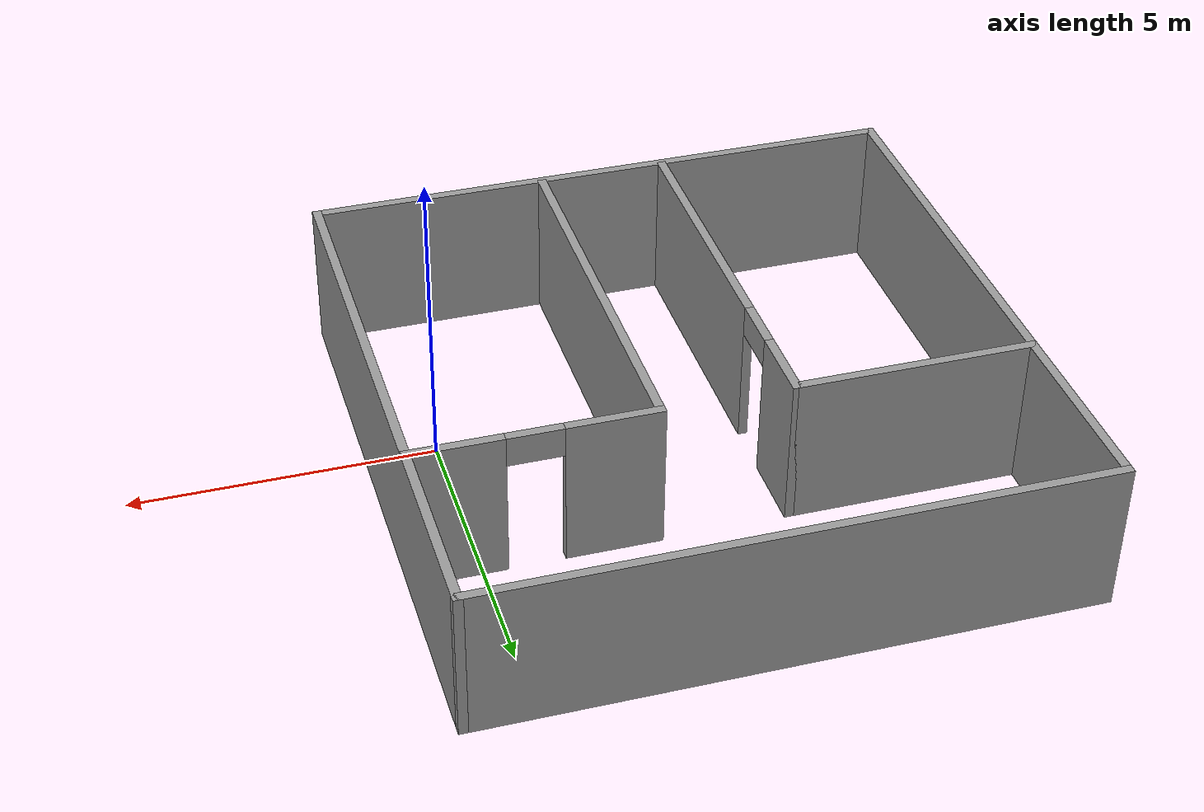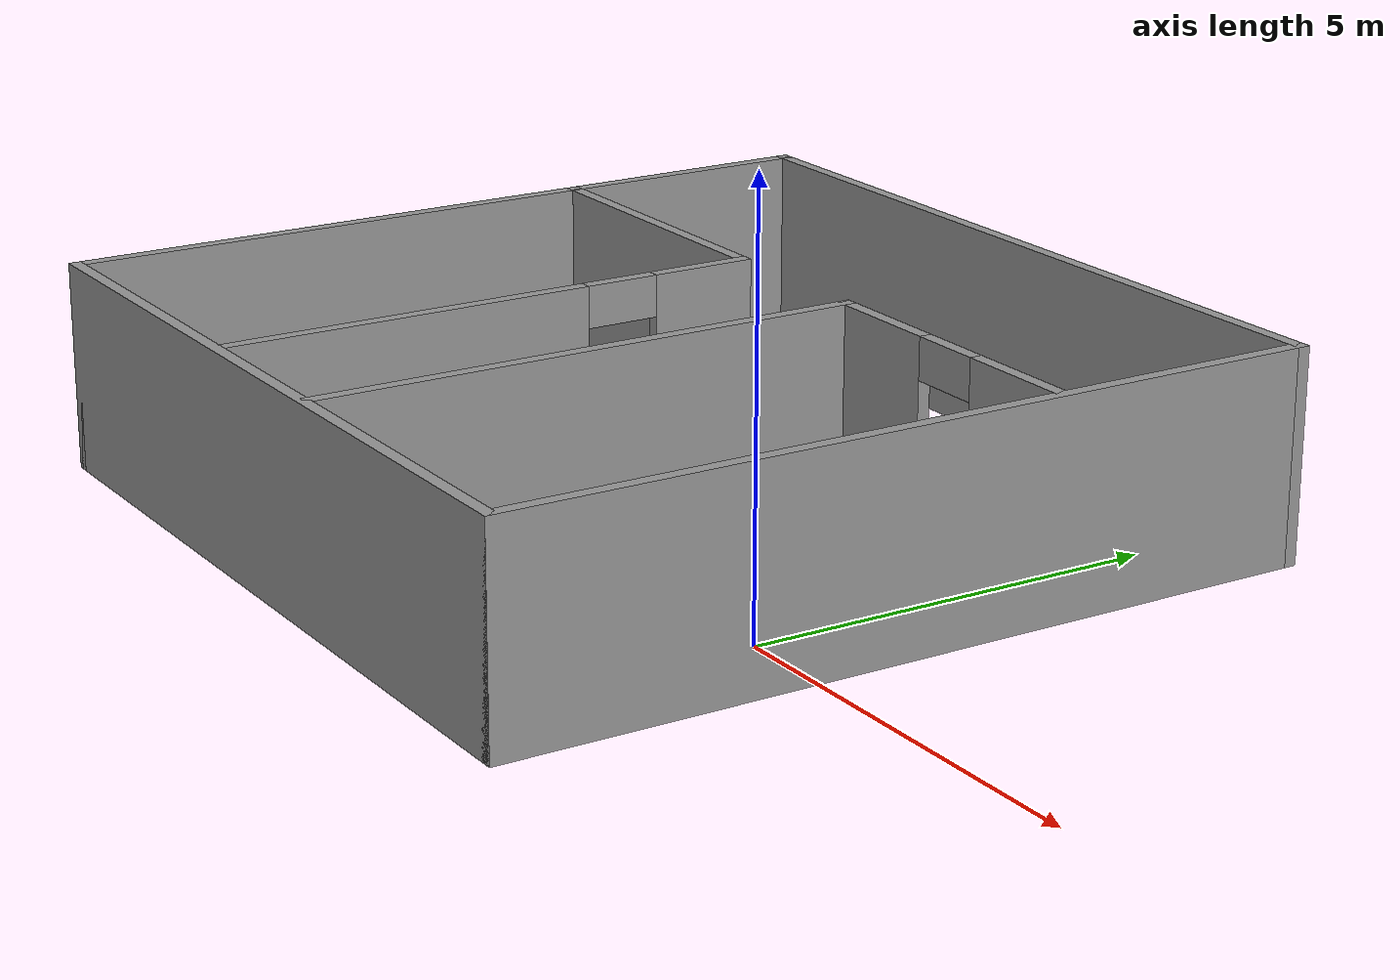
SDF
<?xml version='1.0'?>
<sdf version='1.6'>
  <model name='lego_room'>
    <pose frame=''>-3.84337 1.27671 0 0 -0 0</pose>
    <link name='Wall_11'>
      <collision name='Wall_11_Collision'>
        <geometry>
          <box>
            <size>10 0.15 2.5</size>
          </box>
        </geometry>
        <pose frame=''>0 0 1.25 0 -0 0</pose>
      </collision>
      <visual name='Wall_11_Visual'>
        <pose frame=''>0 0 1.25 0 -0 0</pose>
        <geometry>
          <box>
            <size>10 0.15 2.5</size>
          </box>
        </geometry>
        <material>
          <script>
            <uri>file://media/materials/scripts/gazebo.material</uri>
            <name>Gazebo/Grey</name>
          </script>
          <ambient>1 1 1 1</ambient>
        </material>
      </visual>
      <pose frame=''>0 -4.925 0 0 -0 0</pose>
    </link>
    <link name='Wall_12'>
      <collision name='Wall_12_Collision'>
        <geometry>
          <box>
            <size>10 0.15 2.5</size>
          </box>
        </geometry>
        <pose frame=''>0 0 1.25 0 -0 0</pose>
      </collision>
      <visual name='Wall_12_Visual'>
        <pose frame=''>0 0 1.25 0 -0 0</pose>
        <geometry>
          <box>
            <size>10 0.15 2.5</size>
          </box>
        </geometry>
        <material>
          <script>
            <uri>file://media/materials/scripts/gazebo.material</uri>
            <name>Gazebo/Grey</name>
          </script>
          <ambient>1 1 1 1</ambient>
        </material>
      </visual>
      <pose frame=''>4.925 0 0 0 -0 1.5708</pose>
    </link>
    <link name='Wall_13'>
      <collision name='Wall_13_Collision'>
        <geometry>
          <box>
            <size>10 0.15 2.5</size>
          </box>
        </geometry>
        <pose frame=''>0 0 1.25 0 -0 0</pose>
      </collision>
      <visual name='Wall_13_Visual'>
        <pose frame=''>0 0 1.25 0 -0 0</pose>
        <geometry>
          <box>
            <size>10 0.15 2.5</size>
          </box>
        </geometry>
        <material>
          <script>
            <uri>file://media/materials/scripts/gazebo.material</uri>
            <name>Gazebo/Grey</name>
          </script>
          <ambient>1 1 1 1</ambient>
        </material>
      </visual>
      <pose frame=''>0 4.925 0 0 -0 3.14159</pose>
    </link>
    <link name='Wall_14'>
      <collision name='Wall_14_Collision'>
        <geometry>
          <box>
            <size>10 0.15 2.5</size>
          </box>
        </geometry>
        <pose frame=''>0 0 1.25 0 -0 0</pose>
      </collision>
      <visual name='Wall_14_Visual'>
        <pose frame=''>0 0 1.25 0 -0 0</pose>
        <geometry>
          <box>
            <size>10 0.15 2.5</size>
          </box>
        </geometry>
        <material>
          <script>
            <uri>file://media/materials/scripts/gazebo.material</uri>
            <name>Gazebo/Grey</name>
          </script>
          <ambient>1 1 1 1</ambient>
        </material>
      </visual>
      <pose frame=''>-4.925 0 0 0 0 -1.5708</pose>
    </link>
    <link name='Wall_16'>
      <collision name='Wall_16_Collision'>
        <geometry>
          <box>
            <size>4 0.15 2.5</size>
          </box>
        </geometry>
        <pose frame=''>0 0 1.25 0 -0 0</pose>
      </collision>
      <visual name='Wall_16_Visual'>
        <pose frame=''>0 0 1.25 0 -0 0</pose>
        <geometry>
          <box>
            <size>4 0.15 2.5</size>
          </box>
        </geometry>
        <material>
          <script>
            <uri>file://media/materials/scripts/gazebo.material</uri>
            <name>Gazebo/Grey</name>
          </script>
          <ambient>1 1 1 1</ambient>
        </material>
      </visual>
      <pose frame=''>-2.99422 1.74965 0 0 -0 0</pose>
    </link>
    <link name='Wall_17'>
      <pose frame=''>-1.06922 -1.55035 0 0 0 -1.5708</pose>
      <visual name='Wall_17_Visual_0'>
        <pose frame=''>-2.72991 0 1.25 0 -0 0</pose>
        <geometry>
          <box>
            <size>1.29018 0.15 2.5</size>
          </box>
        </geometry>
        <material>
          <script>
            <uri>file://media/materials/scripts/gazebo.material</uri>
            <name>Gazebo/Grey</name>
          </script>
          <ambient>1 1 1 1</ambient>
        </material>
      </visual>
      <collision name='Wall_17_Collision_0'>
        <geometry>
          <box>
            <size>1.29018 0.15 2.5</size>
          </box>
        </geometry>
        <pose frame=''>-2.72991 0 1.25 0 -0 0</pose>
      </collision>
      <visual name='Wall_17_Visual_1'>
        <pose frame=''>1.09509 0 1.25 0 -0 0</pose>
        <geometry>
          <box>
            <size>4.55982 0.15 2.5</size>
          </box>
        </geometry>
        <material>
          <script>
            <uri>file://media/materials/scripts/gazebo.material</uri>
            <name>Gazebo/Grey</name>
          </script>
          <ambient>1 1 1 1</ambient>
        </material>
      </visual>
      <collision name='Wall_17_Collision_1'>
        <geometry>
          <box>
            <size>4.55982 0.15 2.5</size>
          </box>
        </geometry>
        <pose frame=''>1.09509 0 1.25 0 -0 0</pose>
      </collision>
      <visual name='Wall_17_Visual_2'>
        <pose frame=''>-1.63482 0 2.25 0 -0 0</pose>
        <geometry>
          <box>
            <size>0.9 0.15 0.5</size>
          </box>
        </geometry>
        <material>
          <script>
            <uri>file://media/materials/scripts/gazebo.material</uri>
            <name>Gazebo/Grey</name>
          </script>
          <ambient>1 1 1 1</ambient>
        </material>
      </visual>
      <collision name='Wall_17_Collision_2'>
        <geometry>
          <box>
            <size>0.9 0.15 0.5</size>
          </box>
        </geometry>
        <pose frame=''>-1.63482 0 2.25 0 -0 0</pose>
      </collision>
    </link>
    <link name='Wall_19'>
      <pose frame=''>2.98629 1.74965 0 0 -0 3.14159</pose>
      <visual name='Wall_19_Visual_0'>
        <pose frame=''>-1.22624 0 1.25 0 -0 0</pose>
        <geometry>
          <box>
            <size>1.54752 0.15 2.5</size>
          </box>
        </geometry>
        <material>
          <script>
            <uri>file://media/materials/scripts/gazebo.material</uri>
            <name>Gazebo/Grey</name>
          </script>
          <ambient>1 1 1 1</ambient>
        </material>
      </visual>
      <collision name='Wall_19_Collision_0'>
        <geometry>
          <box>
            <size>1.54752 0.15 2.5</size>
          </box>
        </geometry>
        <pose frame=''>-1.22624 0 1.25 0 -0 0</pose>
      </collision>
      <visual name='Wall_19_Visual_1'>
        <pose frame=''>1.22376 0 1.25 0 -0 0</pose>
        <geometry>
          <box>
            <size>1.55248 0.15 2.5</size>
          </box>
        </geometry>
        <material>
          <script>
            <uri>file://media/materials/scripts/gazebo.material</uri>
            <name>Gazebo/Grey</name>
          </script>
          <ambient>1 1 1 1</ambient>
        </material>
      </visual>
      <collision name='Wall_19_Collision_1'>
        <geometry>
          <box>
            <size>1.55248 0.15 2.5</size>
          </box>
        </geometry>
        <pose frame=''>1.22376 0 1.25 0 -0 0</pose>
      </collision>
      <visual name='Wall_19_Visual_2'>
        <pose frame=''>-0.002482 0 2.25 0 -0 0</pose>
        <geometry>
          <box>
            <size>0.9 0.15 0.5</size>
          </box>
        </geometry>
        <material>
          <script>
            <uri>file://media/materials/scripts/gazebo.material</uri>
            <name>Gazebo/Grey</name>
          </script>
          <ambient>1 1 1 1</ambient>
        </material>
      </visual>
      <collision name='Wall_19_Collision_2'>
        <geometry>
          <box>
            <size>0.9 0.15 0.5</size>
          </box>
        </geometry>
        <pose frame=''>-0.002482 0 2.25 0 -0 0</pose>
      </collision>
    </link>
    <link name='Wall_20'>
      <collision name='Wall_20_Collision'>
        <geometry>
          <box>
            <size>6.75 0.15 2.5</size>
          </box>
        </geometry>
        <pose frame=''>0 0 1.25 0 -0 0</pose>
      </collision>
      <visual name='Wall_20_Visual'>
        <pose frame=''>0 0 1.25 0 -0 0</pose>
        <geometry>
          <box>
            <size>6.75 0.15 2.5</size>
          </box>
        </geometry>
        <material>
          <script>
            <uri>file://media/materials/scripts/gazebo.material</uri>
            <name>Gazebo/Grey</name>
          </script>
          <ambient>1 1 1 1</ambient>
        </material>
      </visual>
      <pose frame=''>1.06129 -1.55035 0 0 0 -1.5708</pose>
    </link>
    <static>1</static>
  </model>
</sdf>
